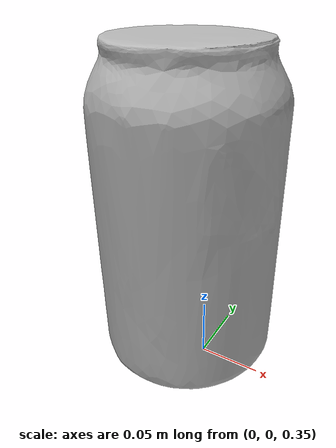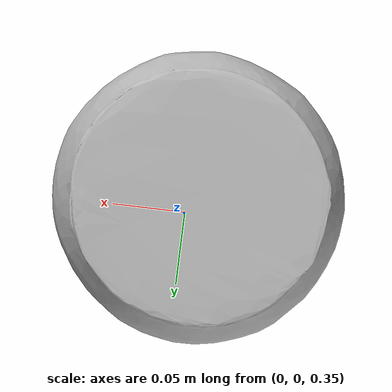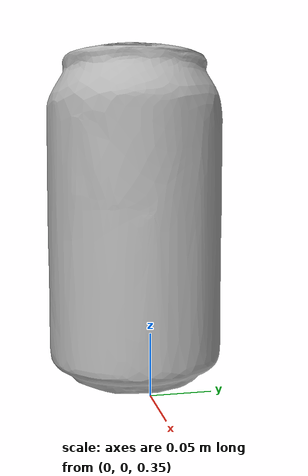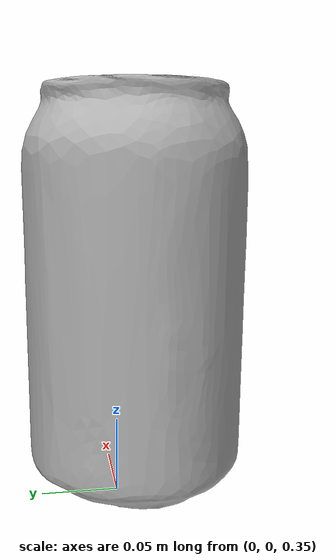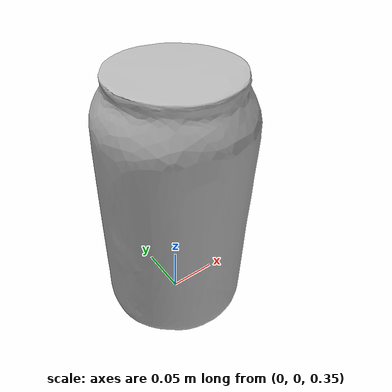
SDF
<?xml version="1.0" ?>
<sdf version="1.5">
  <model name="coke_can">
    <link name="link">
      <inertial>
        <pose>-0.01 -0.012 0.15 0 0 0</pose>
        <mass>0.390</mass>
        <inertia>
          <ixx>0.00058</ixx>
          <ixy>0</ixy>
          <ixz>0</ixz>
          <iyy>0.00058</iyy>
          <iyz>0</iyz>
          <izz>0.00019</izz>
        </inertia>
      </inertial>
  <collision name="collision">
  <pose>0 0 0 0 0 0</pose> <!-- Change -0.46 to 0 -->
  <geometry>
    <mesh>
      <uri>model://coke_can/meshes/coke_can.dae</uri>
      <scale>2.0 2.0 2.0</scale>
    </mesh>
  </geometry>
</collision>

<visual name="visual">
  <pose>0 0 0 0 0 0</pose> <!-- Change -0.46 to 0 -->
  <geometry>
    <mesh>
      <uri>model://coke_can/meshes/coke_can.dae</uri>
      <scale>2.0 2.0 2.0</scale>
    </mesh>
  </geometry>
</visual>

    </link>
  </model>
</sdf>
